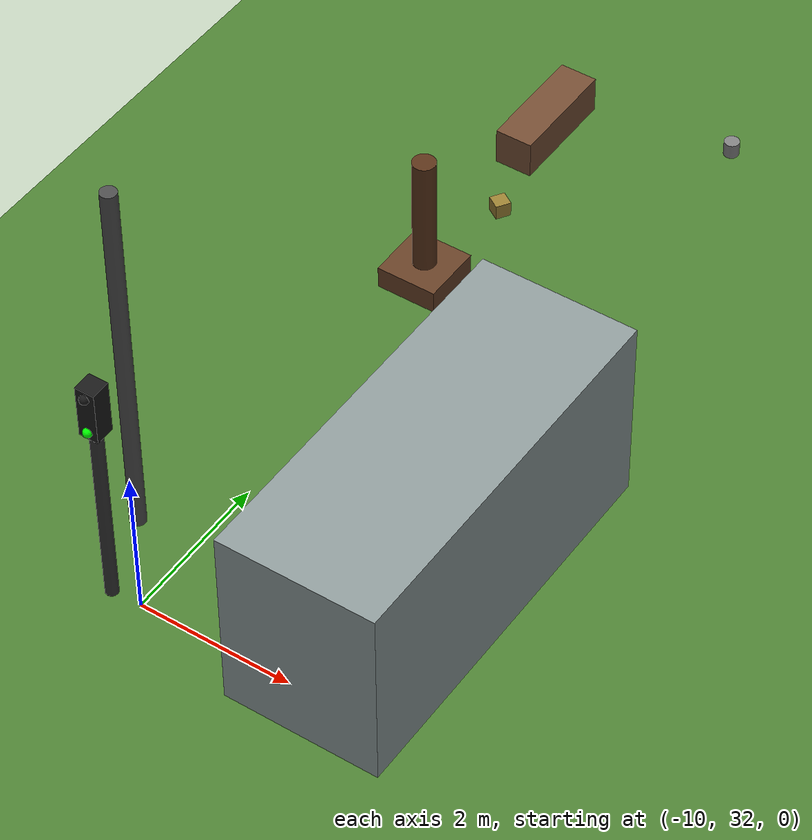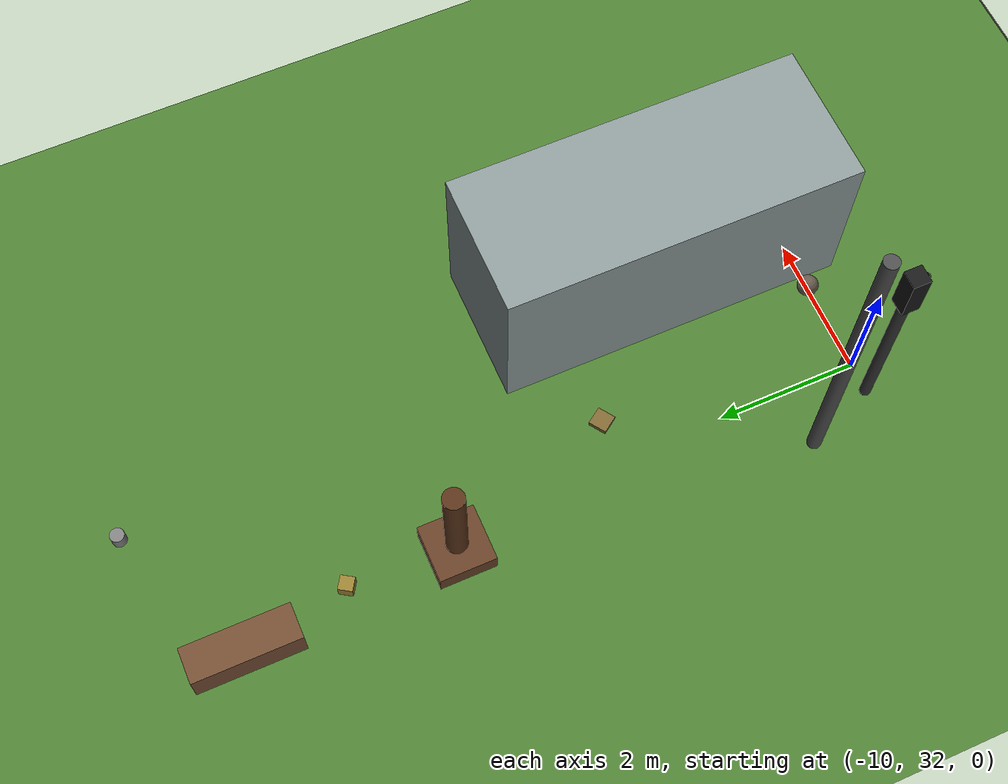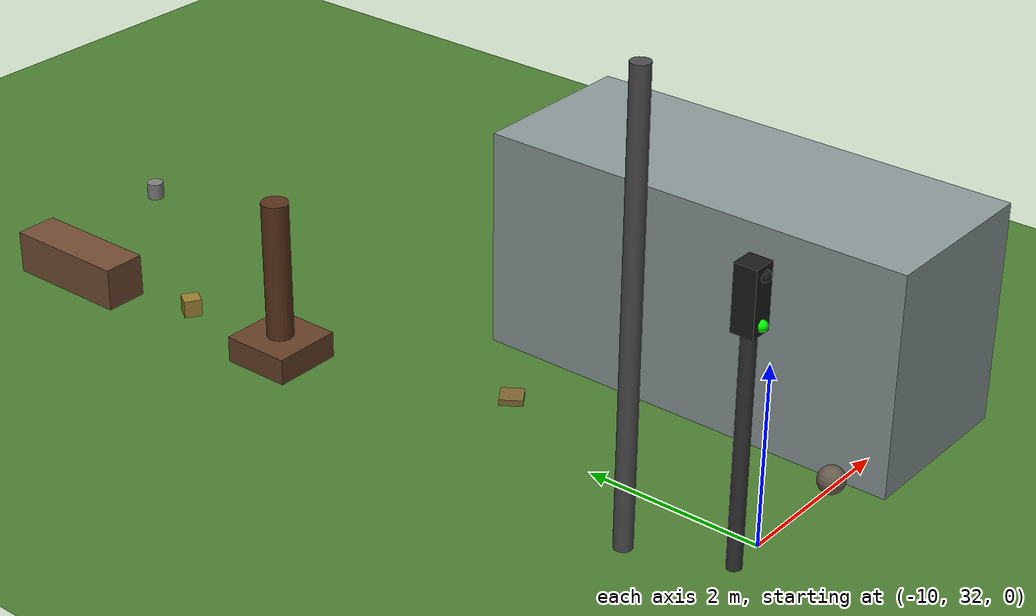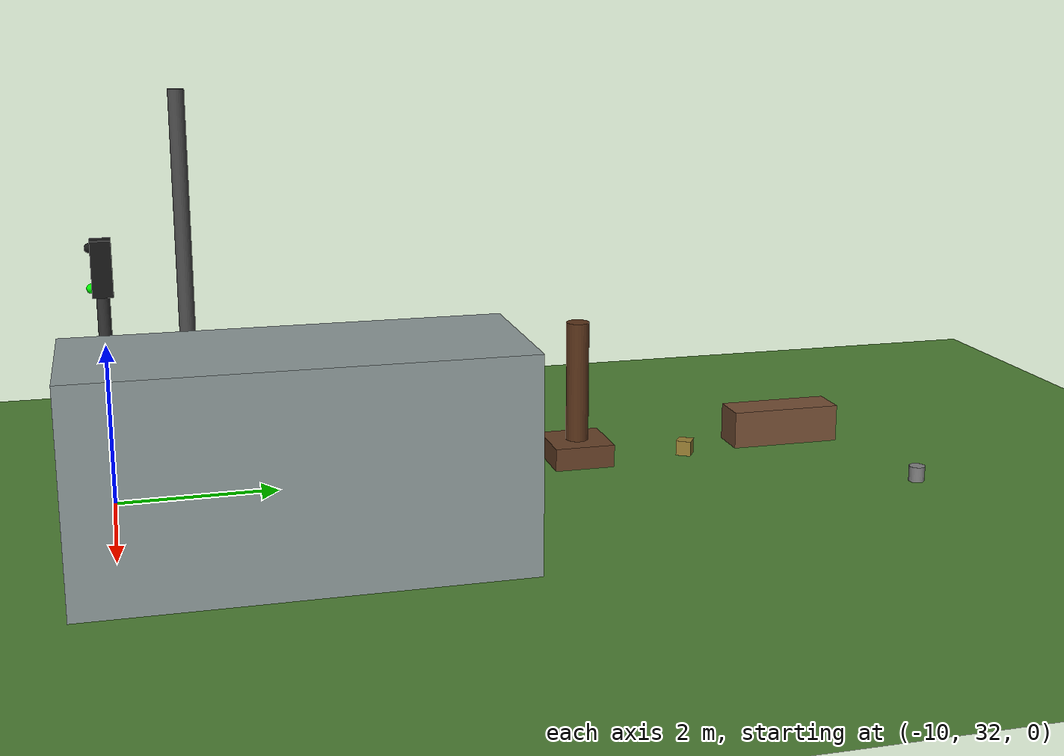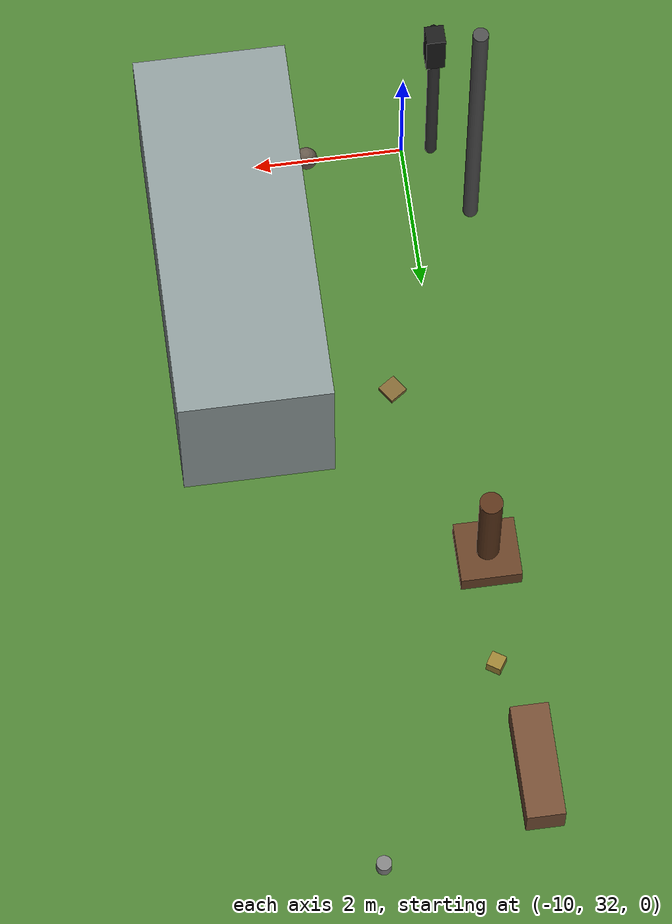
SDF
<sdf version="1.10">
 <world name="swan_town">
  <model name="ground_plane">
   <pose>-14 30 -0.025 0 0 0</pose>
   <static>true</static>
   <link name="link">
    <collision name="collision">
     <geometry><plane><normal>0 0 1</normal><size>100 100</size></plane></geometry>
    </collision>
    <visual name="visual">
     <geometry><plane><normal>0 0 1</normal><size>100 100</size></plane></geometry>
     <material><ambient>0.3 0.5 0.2 1</ambient><diffuse>0.3 0.5 0.2 1</diffuse></material>
    </visual>
   </link>
  </model>
  <model name="building_right_2">
   <static>true</static>
   <pose>-7.5 34 1.225 0 0 0</pose>
   <link name="link">
    <collision name="collision"><geometry><box><size>2 5 2.5</size></box></geometry></collision>
    <visual name="visual">
     <geometry><box><size>2 5 2.5</size></box></geometry>
     <material><ambient>0.55 0.6 0.6 1</ambient><diffuse>0.55 0.6 0.6 1</diffuse></material>
    </visual>
   </link>
  </model>
  <model name="tree_4">
   <static>true</static>
   <pose>-10.3 38 0.125 0 0 0</pose>
   <link name="link">
    <collision name="collision"><geometry><box><size>0.8 0.8 0.3</size></box></geometry></collision>
    <visual name="visual">
     <geometry><box><size>0.8 0.8 0.3</size></box></geometry>
     <material><ambient>0.4 0.25 0.15 1</ambient><diffuse>0.4 0.25 0.15 1</diffuse></material>
    </visual>
   </link>
  </model>
  <model name="tree_4_trunk">
   <static>true</static>
   <pose>-10.3 38 1.075 0 0 0</pose>
   <link name="link">
    <collision name="collision">
     <geometry><cylinder><radius>0.15</radius><length>1.6</length></cylinder></geometry>
    </collision>
    <visual name="visual">
     <geometry><cylinder><radius>0.15</radius><length>1.6</length></cylinder></geometry>
     <material><ambient>0.35 0.2 0.1 1</ambient><diffuse>0.35 0.2 0.1 1</diffuse></material>
    </visual>
   </link>
  </model>
  <model name="bench_2">
   <static>true</static>
   <pose>-10.5 41 0.225 0 0 1.5708</pose>
   <link name="link">
    <collision name="collision"><geometry><box><size>1.5 0.5 0.5</size></box></geometry></collision>
    <visual name="visual">
     <geometry><box><size>1.5 0.5 0.5</size></box></geometry>
     <material><ambient>0.45 0.3 0.2 1</ambient><diffuse>0.45 0.3 0.2 1</diffuse></material>
    </visual>
   </link>
  </model>
  <model name="pole_2">
   <static>true</static>
   <pose>-10.8 33 2.475 0 0 0</pose>
   <link name="link">
    <collision name="collision">
     <geometry><cylinder><radius>0.1</radius><length>5</length></cylinder></geometry>
    </collision>
    <visual name="visual">
     <geometry><cylinder><radius>0.1</radius><length>5</length></cylinder></geometry>
     <material><ambient>0.3 0.3 0.3 1</ambient><diffuse>0.3 0.3 0.3 1</diffuse></material>
    </visual>
   </link>
  </model>
  <model name="extra_rock_4">
   <static>true</static>
   <pose>-8.7 32 0.105 0 0 0</pose>
   <link name="link">
    <collision name="collision"><geometry><sphere><radius>0.15</radius></sphere></geometry></collision>
    <visual name="visual">
     <geometry><sphere><radius>0.15</radius></sphere></geometry>
     <material><ambient>0.4 0.35 0.3 1</ambient><diffuse>0.4 0.35 0.3 1</diffuse></material>
    </visual>
   </link>
  </model>
  <model name="extra_debris_4">
   <static>true</static>
   <pose>-9.4 35.5 0.035 0 0 0.6</pose>
   <link name="link">
    <collision name="collision"><geometry><box><size>0.26 0.26 0.07</size></box></geometry></collision>
    <visual name="visual">
     <geometry><box><size>0.26 0.26 0.07</size></box></geometry>
     <material><ambient>0.5 0.4 0.2 1</ambient><diffuse>0.5 0.4 0.2 1</diffuse></material>
    </visual>
   </link>
  </model>
  <model name="extra_box_4">
   <static>true</static>
   <pose>-10.2 39.5 0.075 0 0 1</pose>
   <link name="link">
    <collision name="collision"><geometry><box><size>0.2 0.2 0.2</size></box></geometry></collision>
    <visual name="visual">
     <geometry><box><size>0.2 0.2 0.2</size></box></geometry>
     <material><ambient>0.6 0.5 0.2 1</ambient><diffuse>0.6 0.5 0.2 1</diffuse></material>
    </visual>
   </link>
  </model>
  <model name="extra_cylinder_4">
   <static>true</static>
   <pose>-8.4 42 0.075 0 0 0</pose>
   <link name="link">
    <collision name="collision">
     <geometry><cylinder><radius>0.1</radius><length>0.2</length></cylinder></geometry>
    </collision>
    <visual name="visual">
     <geometry><cylinder><radius>0.1</radius><length>0.2</length></cylinder></geometry>
     <material><ambient>0.5 0.5 0.5 1</ambient><diffuse>0.5 0.5 0.5 1</diffuse></material>
    </visual>
   </link>
  </model>
  <model name="traffic_light_2">
   <static>true</static>
   <pose>-10.4 32 1.475 0 0 0</pose>
   <link name="link">
    <collision name="collision">
     <geometry><cylinder><radius>0.08</radius><length>3</length></cylinder></geometry>
    </collision>
    <visual name="visual">
     <geometry><cylinder><radius>0.08</radius><length>3</length></cylinder></geometry>
     <material><ambient>0.2 0.2 0.2 1</ambient><diffuse>0.2 0.2 0.2 1</diffuse></material>
    </visual>
   </link>
  </model>
  <model name="traffic_light_2_head">
   <static>true</static>
   <pose>-10.4 32 2.875 0 0 0</pose>
   <link name="link">
    <visual name="visual">
     <geometry><box><size>0.25 0.25 0.7</size></box></geometry>
     <material><ambient>0.1 0.1 0.1 1</ambient><diffuse>0.1 0.1 0.1 1</diffuse></material>
    </visual>
   </link>
  </model>
  <model name="traffic_light_2_red">
   <static>true</static>
   <pose>-10.4 31.87 3.125 0 0 0</pose>
   <link name="link">
    <visual name="visual">
     <geometry><sphere><radius>0.06</radius></sphere></geometry>
     <material><ambient>0.1 0.1 0.1 1</ambient><diffuse>0.1 0.1 0.1 1</diffuse></material>
    </visual>
   </link>
  </model>
  <model name="traffic_light_2_green">
   <static>true</static>
   <pose>-10.4 31.87 2.625 0 0 0</pose>
   <link name="link">
    <visual name="visual">
     <geometry><sphere><radius>0.06</radius></sphere></geometry>
     <material><ambient>0 1 0 1</ambient><diffuse>0 1 0 1</diffuse><emissive>0 0.6 0 1</emissive></material>
    </visual>
   </link>
  </model>
  <model name="ground">
   <static>true</static>
   <pose>15 0 -0.1 0 0 0</pose>
   <link name="body">
    <collision name="box_collision"><geometry><box><size>46 24 0.2</size></box></geometry></collision>
    <visual name="box_visual">
     <geometry><box><size>46 24 0.2</size></box></geometry>
     <material><ambient>0.64 0.61 0.55 1</ambient><diffuse>0.64 0.61 0.55 1</diffuse></material>
    </visual>
   </link>
  </model>
 </world>
</sdf>
